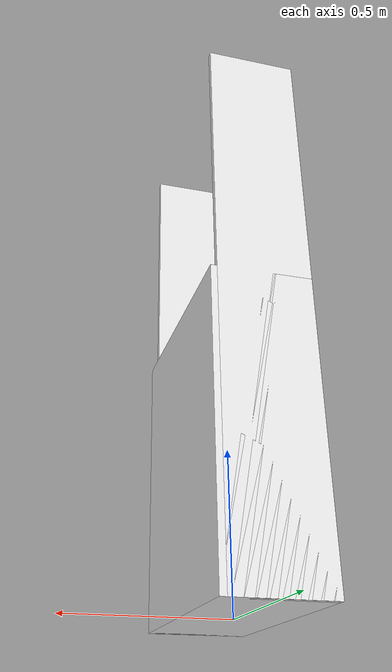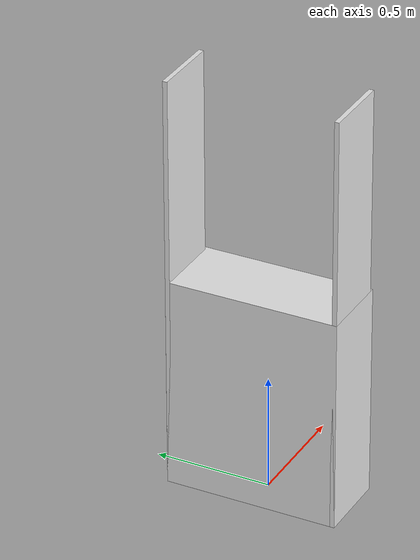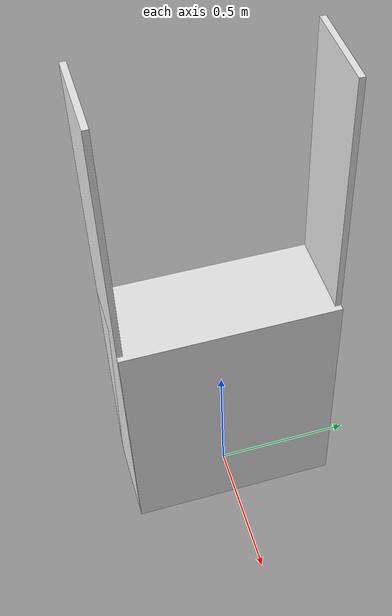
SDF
<?xml version="1.0"?>
<sdf version="1.6">
  <model name="rgo2015/cupboard/frame">
    <link name="1_link">
      <collision name="1_col">
        <geometry>
          <box>
            <size>0.32 0.75 0.93</size>
          </box>
        </geometry>
      </collision>
      <visual name="1_vis">
        <geometry>
          <box>
            <size>0.32 0.75 0.93</size>
          </box>
        </geometry>
        <material>
          <ambient>0.9 0.9 0.9 1</ambient>
        </material>
      </visual>
      <pose>0.0 0.0 0.465 0 0 0</pose>
    </link>
    <link name="2_link">
      <collision name="2_col">
        <geometry>
          <box>
            <size>0.3 0.02 1.815</size>
          </box>
        </geometry>
      </collision>
      <visual name="2_vis">
        <geometry>
          <box>
            <size>0.3 0.02 1.815</size>
          </box>
        </geometry>
        <material>
          <ambient>0.9 0.9 0.9 1</ambient>
        </material>
      </visual>
      <pose>-0.01 -0.365 0.9075 0 0 0</pose>
    </link>
    <link name="3_link">
      <collision name="3_col">
        <geometry>
          <box>
            <size>0.3 0.02 1.815</size>
          </box>
        </geometry>
      </collision>
      <visual name="3_vis">
        <geometry>
          <box>
            <size>0.3 0.02 1.815</size>
          </box>
        </geometry>
        <material>
          <ambient>0.9 0.9 0.9 1</ambient>
        </material>
      </visual>
      <pose>-0.01 0.365 0.9075 0 0 0</pose>
    </link>
    <static>true</static>
  </model>
</sdf>
